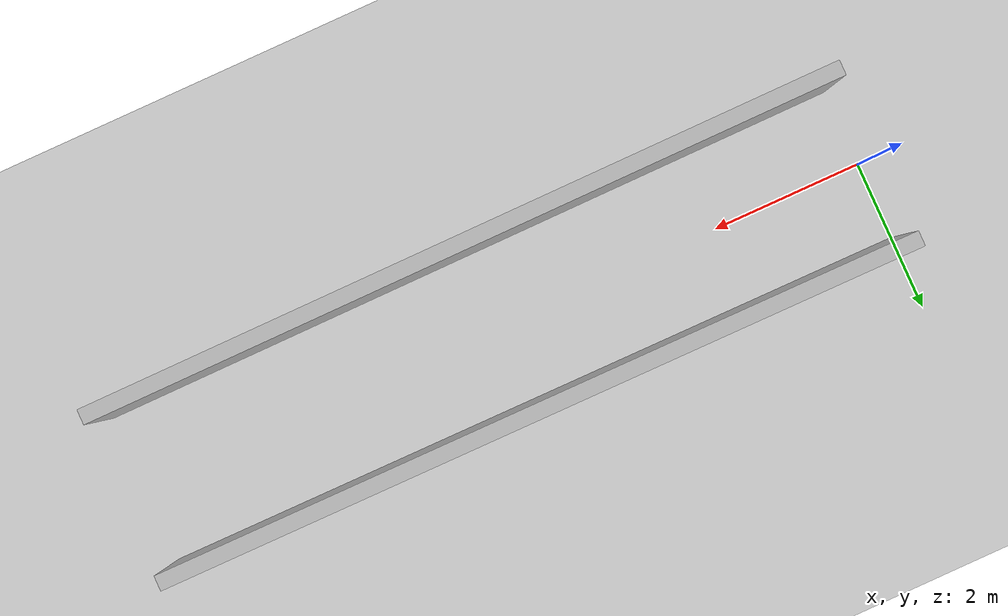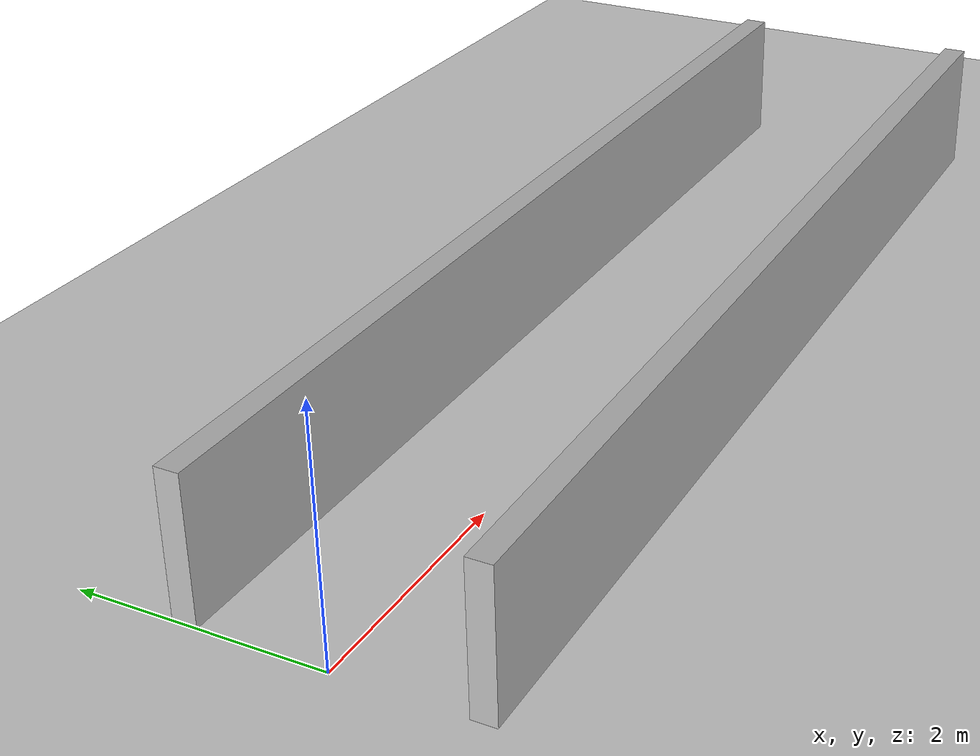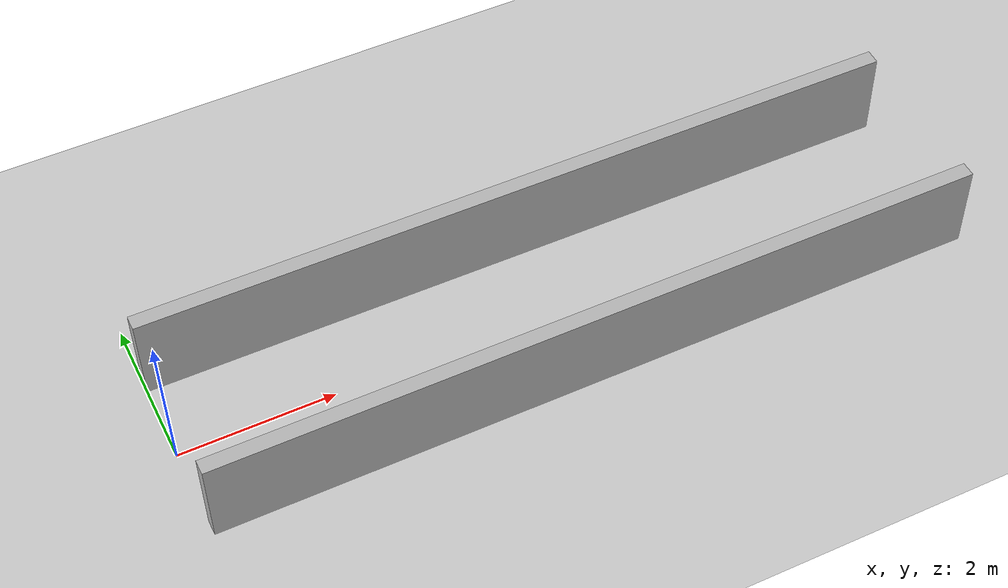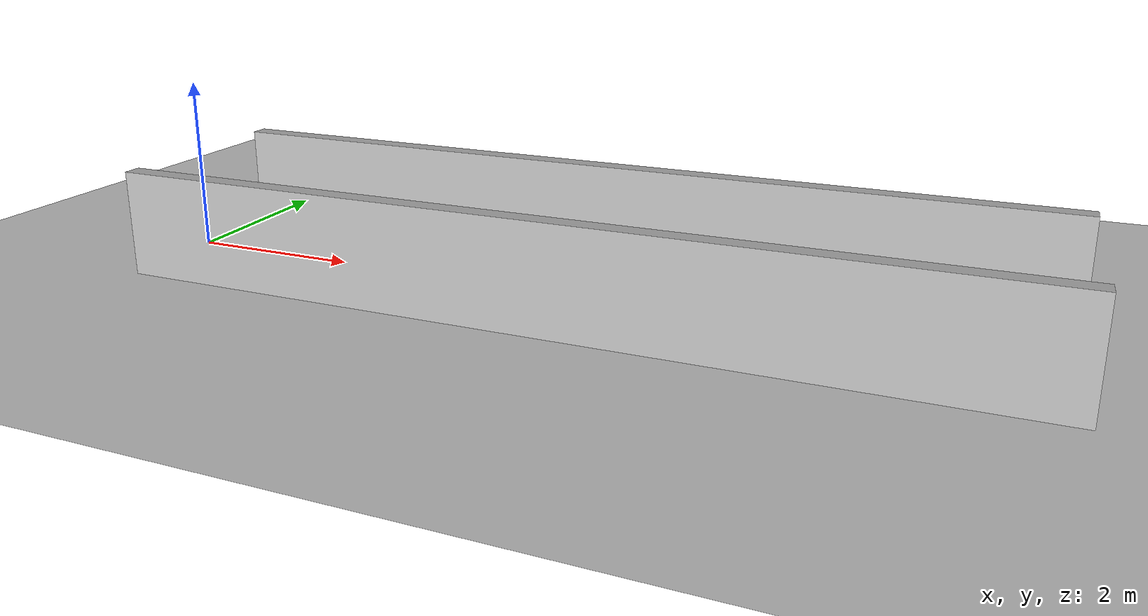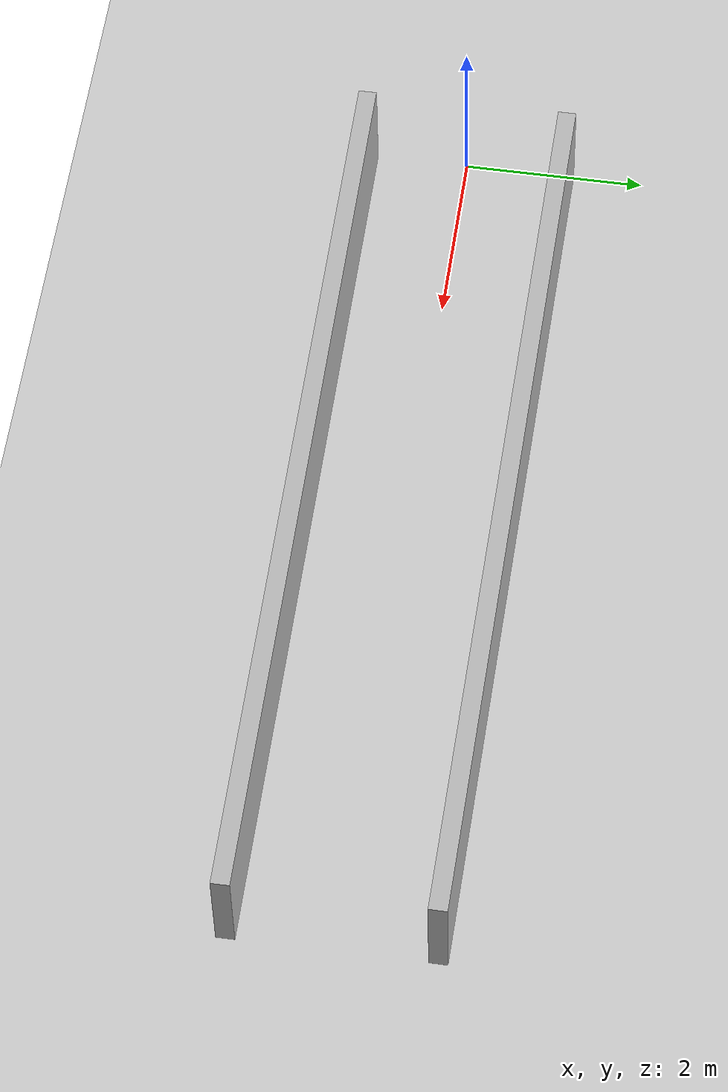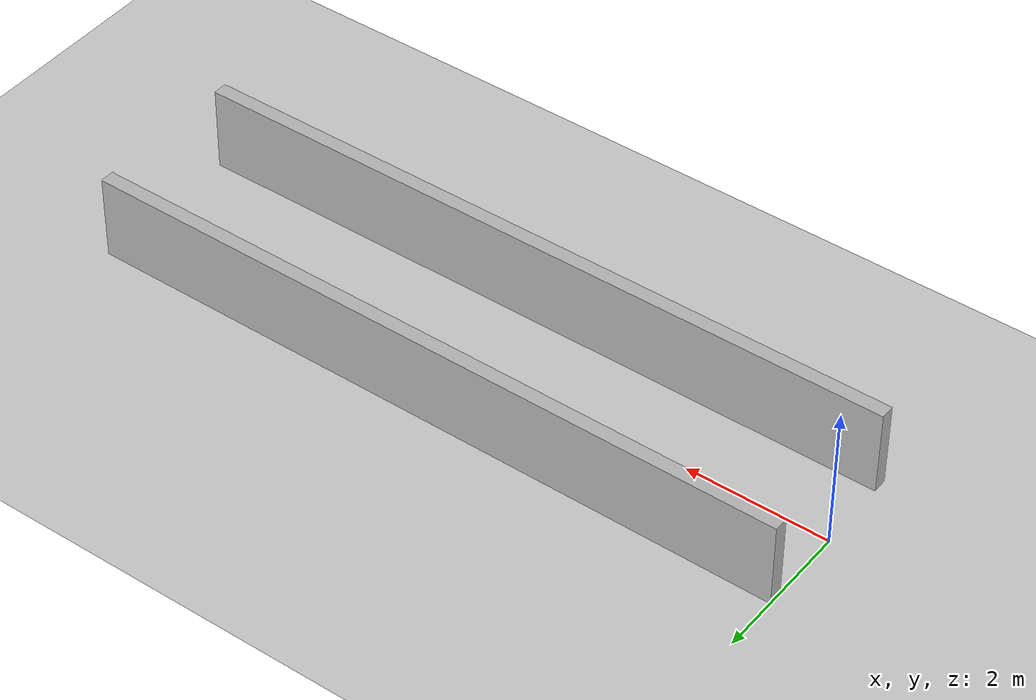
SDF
<?xml version="1.0"?>
<sdf version="1.6">
  <world name="v2-04f-corridor-s4804">
    <gravity>0 0 -9.81</gravity>
    <physics name="v2_deterministic" type="ode">
      <max_step_size>0.002</max_step_size>
      <real_time_update_rate>500</real_time_update_rate>
    </physics>
    <include>
      <uri>model://sun</uri>
    </include>
    <include>
      <uri>model://ground_plane</uri>
    </include>
    <model name="corridor-left">
      <static>true</static>
      <pose>4.998763627 1.111258443 0.600000000 0 0 -0.003027529</pose>
      <link name="link">
        <collision name="collision">
          <geometry>
            <box>
              <size>10.000000 0.200000 1.200000</size>
            </box>
          </geometry>
        </collision>
        <visual name="visual">
          <geometry>
            <box>
              <size>10.000000 0.200000 1.200000</size>
            </box>
          </geometry>
        </visual>
      </link>
    </model>
    <model name="corridor-right">
      <static>true</static>
      <pose>5.013695788 -1.103005873 0.600000000 0 0 0.002984125</pose>
      <link name="link">
        <collision name="collision">
          <geometry>
            <box>
              <size>10.000000 0.200000 1.200000</size>
            </box>
          </geometry>
        </collision>
        <visual name="visual">
          <geometry>
            <box>
              <size>10.000000 0.200000 1.200000</size>
            </box>
          </geometry>
        </visual>
      </link>
    </model>
  </world>
</sdf>
